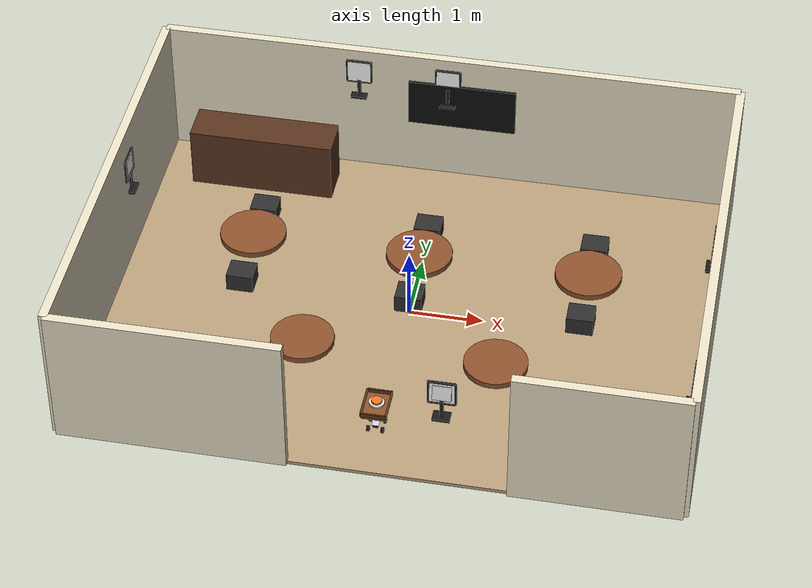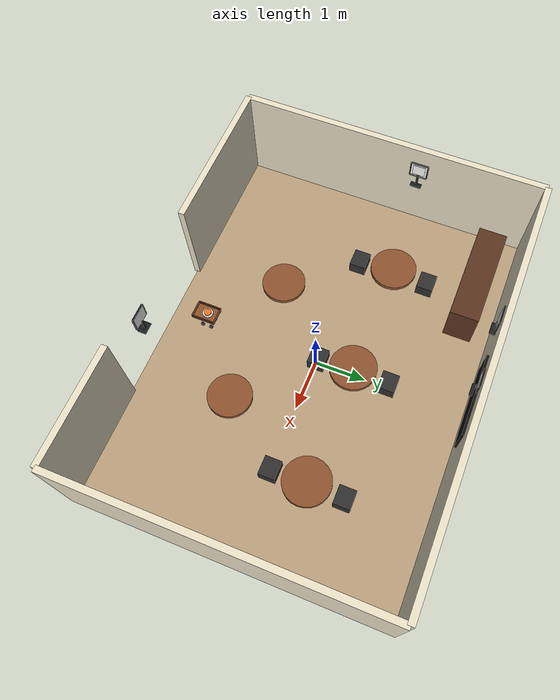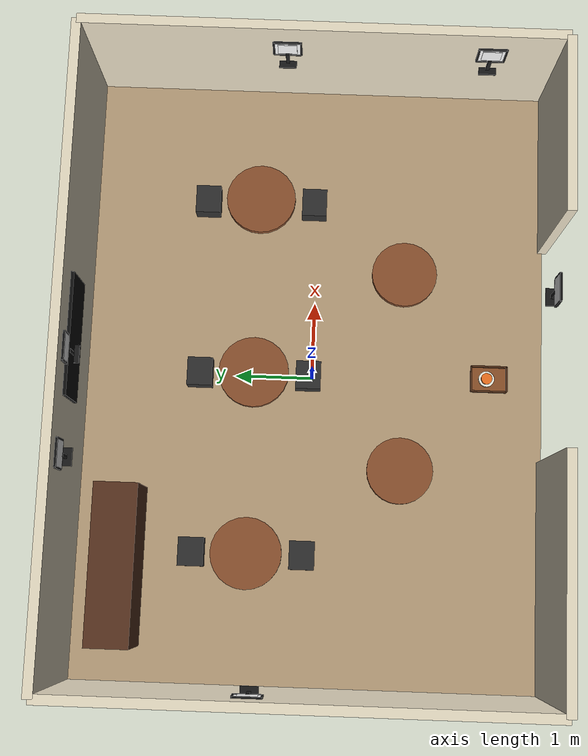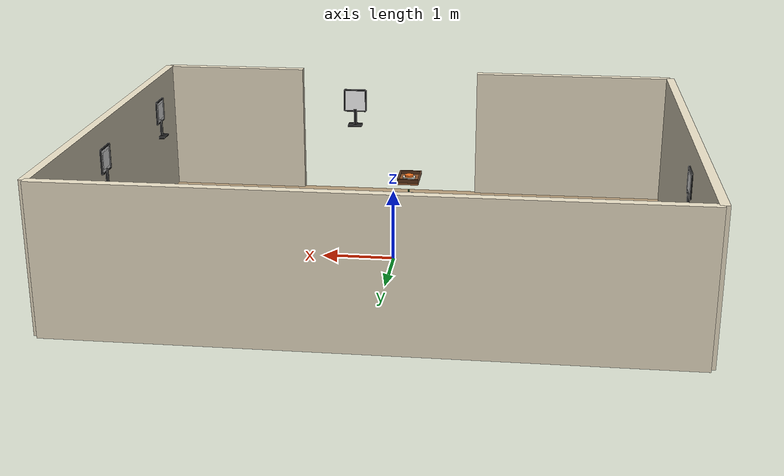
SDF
<?xml version="1.0" ?>
<sdf version="1.10">
  <world name="restaurant_qr_activity">
    <physics name="1ms" type="ignored">
      <max_step_size>0.001</max_step_size>
      <real_time_factor>1.0</real_time_factor>
    </physics>

    <plugin filename="gz-sim-physics-system" name="gz::sim::systems::Physics"/>
    <plugin filename="gz-sim-user-commands-system" name="gz::sim::systems::UserCommands"/>
    <plugin filename="gz-sim-scene-broadcaster-system" name="gz::sim::systems::SceneBroadcaster"/>
    <plugin filename="gz-sim-sensors-system" name="gz::sim::systems::Sensors">
      <render_engine>ogre2</render_engine>
    </plugin>

    <light type="directional" name="sun">
      <cast_shadows>true</cast_shadows>
      <pose>0 0 10 0 0 0</pose>
      <diffuse>0.8 0.8 0.8 1</diffuse>
      <specular>0.2 0.2 0.2 1</specular>
      <direction>-0.4 0.2 -0.9</direction>
    </light>

    <!-- Camera viewpoint when the world opens -->
    <gui fullscreen="0">
      <plugin filename="MinimalScene" name="3D View">
        <gz-gui>
          <title>3D View</title>
          <property type="bool" key="showTitleBar">false</property>
          <property type="string" key="state">docked</property>
        </gz-gui>
        <engine>ogre2</engine>
        <scene>scene</scene>
        <ambient_light>0.6 0.6 0.6</ambient_light>
        <background_color>0.78 0.82 0.86</background_color>
        <camera_pose>-4 -6 5 0 0.65 0.78</camera_pose>
      </plugin>
    </gui>

    <!-- Floor -->
    <model name="restaurant_floor">
      <static>true</static>
      <link name="floor_link">
        <collision name="collision"><geometry><box><size>8 6 0.05</size></box></geometry></collision>
        <visual name="visual">
          <geometry><box><size>8 6 0.05</size></box></geometry>
          <material><ambient>0.72 0.62 0.48 1</ambient><diffuse>0.72 0.62 0.48 1</diffuse></material>
        </visual>
      </link>
    </model>

    <!-- Walls: simple restaurant room, opening near front-right for entry path -->
    <model name="back_wall"><static>true</static><pose>0 3 1 0 0 0</pose><link name="link"><collision name="c"><geometry><box><size>8 0.12 2</size></box></geometry></collision><visual name="v"><geometry><box><size>8 0.12 2</size></box></geometry><material><ambient>0.92 0.88 0.78 1</ambient><diffuse>0.92 0.88 0.78 1</diffuse></material></visual></link></model>
    <model name="left_wall"><static>true</static><pose>-4 0 1 0 0 0</pose><link name="link"><collision name="c"><geometry><box><size>0.12 6 2</size></box></geometry></collision><visual name="v"><geometry><box><size>0.12 6 2</size></box></geometry><material><ambient>0.92 0.88 0.78 1</ambient><diffuse>0.92 0.88 0.78 1</diffuse></material></visual></link></model>
    <model name="right_wall"><static>true</static><pose>4 0 1 0 0 0</pose><link name="link"><collision name="c"><geometry><box><size>0.12 6 2</size></box></geometry></collision><visual name="v"><geometry><box><size>0.12 6 2</size></box></geometry><material><ambient>0.92 0.88 0.78 1</ambient><diffuse>0.92 0.88 0.78 1</diffuse></material></visual></link></model>
    <model name="front_wall_left"><static>true</static><pose>-2.5 -3 1 0 0 0</pose><link name="link"><collision name="c"><geometry><box><size>3 0.12 2</size></box></geometry></collision><visual name="v"><geometry><box><size>3 0.12 2</size></box></geometry><material><ambient>0.92 0.88 0.78 1</ambient><diffuse>0.92 0.88 0.78 1</diffuse></material></visual></link></model>
    <model name="front_wall_right"><static>true</static><pose>2.9 -3 1 0 0 0</pose><link name="link"><collision name="c"><geometry><box><size>2.2 0.12 2</size></box></geometry></collision><visual name="v"><geometry><box><size>2.2 0.12 2</size></box></geometry><material><ambient>0.92 0.88 0.78 1</ambient><diffuse>0.92 0.88 0.78 1</diffuse></material></visual></link></model>

    <!-- Counter / host stand -->
    <model name="service_counter"><static>true</static><pose>-2.5 2.35 0.45 0 0 0</pose><link name="link"><collision name="c"><geometry><box><size>2.0 0.55 0.9</size></box></geometry></collision><visual name="v"><geometry><box><size>2.0 0.55 0.9</size></box></geometry><material><ambient>0.35 0.20 0.12 1</ambient><diffuse>0.35 0.20 0.12 1</diffuse></material></visual></link></model>
    <model name="menu_board"><static>true</static><pose>0.2 2.91 1.25 0 0 0</pose><link name="link"><collision name="c"><geometry><box><size>1.5 0.04 0.7</size></box></geometry></collision><visual name="v"><geometry><box><size>1.5 0.04 0.7</size></box></geometry><material><ambient>0.05 0.05 0.05 1</ambient><diffuse>0.05 0.05 0.05 1</diffuse></material></visual></link></model>

    <!-- Tables and chairs. Main driving aisle is kept around y=-2 to y=0. -->
    <model name="table_1"><static>true</static><pose>-2.3 0.75 0.38 0 0 0</pose><link name="link"><collision name="c"><geometry><cylinder><radius>0.45</radius><length>0.08</length></cylinder></geometry></collision><visual name="v"><geometry><cylinder><radius>0.45</radius><length>0.08</length></cylinder></geometry><material><ambient>0.55 0.32 0.18 1</ambient><diffuse>0.55 0.32 0.18 1</diffuse></material></visual></link></model>
    <model name="table_2"><static>true</static><pose>0.0 0.75 0.38 0 0 0</pose><link name="link"><collision name="c"><geometry><cylinder><radius>0.45</radius><length>0.08</length></cylinder></geometry></collision><visual name="v"><geometry><cylinder><radius>0.45</radius><length>0.08</length></cylinder></geometry><material><ambient>0.55 0.32 0.18 1</ambient><diffuse>0.55 0.32 0.18 1</diffuse></material></visual></link></model>
    <model name="table_3"><static>true</static><pose>2.3 0.75 0.38 0 0 0</pose><link name="link"><collision name="c"><geometry><cylinder><radius>0.45</radius><length>0.08</length></cylinder></geometry></collision><visual name="v"><geometry><cylinder><radius>0.45</radius><length>0.08</length></cylinder></geometry><material><ambient>0.55 0.32 0.18 1</ambient><diffuse>0.55 0.32 0.18 1</diffuse></material></visual></link></model>
    <model name="table_4"><static>true</static><pose>-1.2 -1.15 0.38 0 0 0</pose><link name="link"><collision name="c"><geometry><cylinder><radius>0.42</radius><length>0.08</length></cylinder></geometry></collision><visual name="v"><geometry><cylinder><radius>0.42</radius><length>0.08</length></cylinder></geometry><material><ambient>0.55 0.32 0.18 1</ambient><diffuse>0.55 0.32 0.18 1</diffuse></material></visual></link></model>
    <model name="table_5"><static>true</static><pose>1.35 -1.15 0.38 0 0 0</pose><link name="link"><collision name="c"><geometry><cylinder><radius>0.42</radius><length>0.08</length></cylinder></geometry></collision><visual name="v"><geometry><cylinder><radius>0.42</radius><length>0.08</length></cylinder></geometry><material><ambient>0.55 0.32 0.18 1</ambient><diffuse>0.55 0.32 0.18 1</diffuse></material></visual></link></model>

    <!-- Simple chairs as small blocks -->
    <model name="chair_blocks"><static>true</static>
      <link name="chairs">
        <!-- collision is simplified as one invisible-ish long box, visuals are individual seats -->
        <collision name="c"><geometry><box><size>6.2 3.1 0.32</size></box></geometry><pose>0 0 0.16 0 0 0</pose></collision>
        <visual name="chair_1"><pose>-2.3 0.05 0.22 0 0 0</pose><geometry><box><size>0.36 0.32 0.25</size></box></geometry><material><ambient>0.18 0.18 0.18 1</ambient><diffuse>0.18 0.18 0.18 1</diffuse></material></visual>
        <visual name="chair_2"><pose>-2.3 1.45 0.22 0 0 0</pose><geometry><box><size>0.36 0.32 0.25</size></box></geometry><material><ambient>0.18 0.18 0.18 1</ambient><diffuse>0.18 0.18 0.18 1</diffuse></material></visual>
        <visual name="chair_3"><pose>0.0 0.05 0.22 0 0 0</pose><geometry><box><size>0.36 0.32 0.25</size></box></geometry><material><ambient>0.18 0.18 0.18 1</ambient><diffuse>0.18 0.18 0.18 1</diffuse></material></visual>
        <visual name="chair_4"><pose>0.0 1.45 0.22 0 0 0</pose><geometry><box><size>0.36 0.32 0.25</size></box></geometry><material><ambient>0.18 0.18 0.18 1</ambient><diffuse>0.18 0.18 0.18 1</diffuse></material></visual>
        <visual name="chair_5"><pose>2.3 0.05 0.22 0 0 0</pose><geometry><box><size>0.36 0.32 0.25</size></box></geometry><material><ambient>0.18 0.18 0.18 1</ambient><diffuse>0.18 0.18 0.18 1</diffuse></material></visual>
        <visual name="chair_6"><pose>2.3 1.45 0.22 0 0 0</pose><geometry><box><size>0.36 0.32 0.25</size></box></geometry><material><ambient>0.18 0.18 0.18 1</ambient><diffuse>0.18 0.18 0.18 1</diffuse></material></visual>
      </link>
    </model>

    <!-- QR / activity stations. Pose format: x y z roll pitch yaw. -->
    <include>
      <name>qr_entrance</name>
      <uri>model://restaurant_qr_marker_01</uri>
      <pose>0.95 -2.93 1.10 0 0 0</pose>
    </include>
    <include>
      <name>qr_counter</name>
      <uri>model://restaurant_qr_marker_02</uri>
      <pose>-1.25 2.91 1.25 0 0 3.14159</pose>
    </include>
    <include>
      <name>qr_table_left</name>
      <uri>model://restaurant_qr_marker_03</uri>
      <pose>-3.93 0.6 1.05 0 0 1.5708</pose>
    </include>
    <include>
      <name>qr_table_center</name>
      <uri>model://restaurant_qr_marker_04</uri>
      <pose>0.0 2.91 1.25 0 0 3.14159</pose>
    </include>
    <include>
      <name>qr_table_right</name>
      <uri>model://restaurant_qr_marker_05</uri>
      <pose>3.93 0.45 1.05 0 0 -1.5708</pose>
    </include>
    <include>
      <name>qr_exit</name>
      <uri>model://restaurant_qr_marker_06</uri>
      <pose>3.93 -2.1 1.05 0 0 -1.5708</pose>
    </include>

    <!-- Optional: if your repo already has ackermann_car, this will spawn it. Delete this include if model is missing. -->
    <include>
      <name>robot_car</name>
      <uri>model://ackermann_car</uri>
      <pose>0 -2.25 0.08 0 0 1.5708</pose>
    </include>
  </world>
</sdf>

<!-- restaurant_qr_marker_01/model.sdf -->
<sdf version="1.10">
  <model name="restaurant_qr_marker_01">
    <static>true</static>
    <link name="qr_whiteboard_link">
      <!-- Model origin is on the floor. QR board center height is 0.42 m. -->
      <visual name="white_backing">
        <pose>0 0.006 0.42 0 0 0</pose>
        <geometry><box><size>0.32 0.018 0.32</size></box></geometry>
        <material><ambient>1 1 1 1</ambient><diffuse>1 1 1 1</diffuse></material>
      </visual>
      <visual name="qr_panel_visual">
        <pose>0 -0.006 0.42 0 0 0</pose>
        <geometry><box><size>0.24 0.012 0.24</size></box></geometry>
        <material>
          <ambient>1 1 1 1</ambient>
          <diffuse>1 1 1 1</diffuse>
          <pbr><metal><albedo_map>materials/textures/qr_01.png</albedo_map><roughness>0.85</roughness><metalness>0.0</metalness></metal></pbr>
        </material>
      </visual>
      <visual name="black_frame_top"><pose>0 0 0.59 0 0 0</pose><geometry><box><size>0.34 0.025 0.025</size></box></geometry><material><ambient>0.05 0.05 0.05 1</ambient><diffuse>0.05 0.05 0.05 1</diffuse></material></visual>
      <visual name="black_frame_bottom"><pose>0 0 0.25 0 0 0</pose><geometry><box><size>0.34 0.025 0.025</size></box></geometry><material><ambient>0.05 0.05 0.05 1</ambient><diffuse>0.05 0.05 0.05 1</diffuse></material></visual>
      <visual name="black_frame_left"><pose>-0.17 0 0.42 0 0 0</pose><geometry><box><size>0.025 0.025 0.34</size></box></geometry><material><ambient>0.05 0.05 0.05 1</ambient><diffuse>0.05 0.05 0.05 1</diffuse></material></visual>
      <visual name="black_frame_right"><pose>0.17 0 0.42 0 0 0</pose><geometry><box><size>0.025 0.025 0.34</size></box></geometry><material><ambient>0.05 0.05 0.05 1</ambient><diffuse>0.05 0.05 0.05 1</diffuse></material></visual>
      <visual name="stand_pole"><pose>0 0 0.14 0 0 0</pose><geometry><box><size>0.045 0.045 0.28</size></box></geometry><material><ambient>0.12 0.12 0.12 1</ambient><diffuse>0.12 0.12 0.12 1</diffuse></material></visual>
      <visual name="stand_base"><pose>0 0 0.015 0 0 0</pose><geometry><box><size>0.22 0.16 0.03</size></box></geometry><material><ambient>0.1 0.1 0.1 1</ambient><diffuse>0.1 0.1 0.1 1</diffuse></material></visual>
      <collision name="qr_board_collision"><pose>0 0 0.42 0 0 0</pose><geometry><box><size>0.34 0.03 0.34</size></box></geometry></collision>
      <collision name="stand_collision"><pose>0 0 0.14 0 0 0</pose><geometry><box><size>0.05 0.05 0.28</size></box></geometry></collision>
      <collision name="base_collision"><pose>0 0 0.015 0 0 0</pose><geometry><box><size>0.22 0.16 0.03</size></box></geometry></collision>
    </link>
  </model>
</sdf>

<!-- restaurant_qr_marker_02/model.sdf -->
<sdf version="1.10">
  <model name="restaurant_qr_marker_02">
    <static>true</static>
    <link name="qr_whiteboard_link">
      <!-- Model origin is on the floor. QR board center height is 0.42 m. -->
      <visual name="white_backing">
        <pose>0 0.006 0.42 0 0 0</pose>
        <geometry><box><size>0.32 0.018 0.32</size></box></geometry>
        <material><ambient>1 1 1 1</ambient><diffuse>1 1 1 1</diffuse></material>
      </visual>
      <visual name="qr_panel_visual">
        <pose>0 -0.006 0.42 0 0 0</pose>
        <geometry><box><size>0.24 0.012 0.24</size></box></geometry>
        <material>
          <ambient>1 1 1 1</ambient>
          <diffuse>1 1 1 1</diffuse>
          <pbr><metal><albedo_map>materials/textures/qr_02.png</albedo_map><roughness>0.85</roughness><metalness>0.0</metalness></metal></pbr>
        </material>
      </visual>
      <visual name="black_frame_top"><pose>0 0 0.59 0 0 0</pose><geometry><box><size>0.34 0.025 0.025</size></box></geometry><material><ambient>0.05 0.05 0.05 1</ambient><diffuse>0.05 0.05 0.05 1</diffuse></material></visual>
      <visual name="black_frame_bottom"><pose>0 0 0.25 0 0 0</pose><geometry><box><size>0.34 0.025 0.025</size></box></geometry><material><ambient>0.05 0.05 0.05 1</ambient><diffuse>0.05 0.05 0.05 1</diffuse></material></visual>
      <visual name="black_frame_left"><pose>-0.17 0 0.42 0 0 0</pose><geometry><box><size>0.025 0.025 0.34</size></box></geometry><material><ambient>0.05 0.05 0.05 1</ambient><diffuse>0.05 0.05 0.05 1</diffuse></material></visual>
      <visual name="black_frame_right"><pose>0.17 0 0.42 0 0 0</pose><geometry><box><size>0.025 0.025 0.34</size></box></geometry><material><ambient>0.05 0.05 0.05 1</ambient><diffuse>0.05 0.05 0.05 1</diffuse></material></visual>
      <visual name="stand_pole"><pose>0 0 0.14 0 0 0</pose><geometry><box><size>0.045 0.045 0.28</size></box></geometry><material><ambient>0.12 0.12 0.12 1</ambient><diffuse>0.12 0.12 0.12 1</diffuse></material></visual>
      <visual name="stand_base"><pose>0 0 0.015 0 0 0</pose><geometry><box><size>0.22 0.16 0.03</size></box></geometry><material><ambient>0.1 0.1 0.1 1</ambient><diffuse>0.1 0.1 0.1 1</diffuse></material></visual>
      <collision name="qr_board_collision"><pose>0 0 0.42 0 0 0</pose><geometry><box><size>0.34 0.03 0.34</size></box></geometry></collision>
      <collision name="stand_collision"><pose>0 0 0.14 0 0 0</pose><geometry><box><size>0.05 0.05 0.28</size></box></geometry></collision>
      <collision name="base_collision"><pose>0 0 0.015 0 0 0</pose><geometry><box><size>0.22 0.16 0.03</size></box></geometry></collision>
    </link>
  </model>
</sdf>

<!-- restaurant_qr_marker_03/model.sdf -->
<sdf version="1.10">
  <model name="restaurant_qr_marker_03">
    <static>true</static>
    <link name="qr_whiteboard_link">
      <!-- Model origin is on the floor. QR board center height is 0.42 m. -->
      <visual name="white_backing">
        <pose>0 0.006 0.42 0 0 0</pose>
        <geometry><box><size>0.32 0.018 0.32</size></box></geometry>
        <material><ambient>1 1 1 1</ambient><diffuse>1 1 1 1</diffuse></material>
      </visual>
      <visual name="qr_panel_visual">
        <pose>0 -0.006 0.42 0 0 0</pose>
        <geometry><box><size>0.24 0.012 0.24</size></box></geometry>
        <material>
          <ambient>1 1 1 1</ambient>
          <diffuse>1 1 1 1</diffuse>
          <pbr><metal><albedo_map>materials/textures/qr_03.png</albedo_map><roughness>0.85</roughness><metalness>0.0</metalness></metal></pbr>
        </material>
      </visual>
      <visual name="black_frame_top"><pose>0 0 0.59 0 0 0</pose><geometry><box><size>0.34 0.025 0.025</size></box></geometry><material><ambient>0.05 0.05 0.05 1</ambient><diffuse>0.05 0.05 0.05 1</diffuse></material></visual>
      <visual name="black_frame_bottom"><pose>0 0 0.25 0 0 0</pose><geometry><box><size>0.34 0.025 0.025</size></box></geometry><material><ambient>0.05 0.05 0.05 1</ambient><diffuse>0.05 0.05 0.05 1</diffuse></material></visual>
      <visual name="black_frame_left"><pose>-0.17 0 0.42 0 0 0</pose><geometry><box><size>0.025 0.025 0.34</size></box></geometry><material><ambient>0.05 0.05 0.05 1</ambient><diffuse>0.05 0.05 0.05 1</diffuse></material></visual>
      <visual name="black_frame_right"><pose>0.17 0 0.42 0 0 0</pose><geometry><box><size>0.025 0.025 0.34</size></box></geometry><material><ambient>0.05 0.05 0.05 1</ambient><diffuse>0.05 0.05 0.05 1</diffuse></material></visual>
      <visual name="stand_pole"><pose>0 0 0.14 0 0 0</pose><geometry><box><size>0.045 0.045 0.28</size></box></geometry><material><ambient>0.12 0.12 0.12 1</ambient><diffuse>0.12 0.12 0.12 1</diffuse></material></visual>
      <visual name="stand_base"><pose>0 0 0.015 0 0 0</pose><geometry><box><size>0.22 0.16 0.03</size></box></geometry><material><ambient>0.1 0.1 0.1 1</ambient><diffuse>0.1 0.1 0.1 1</diffuse></material></visual>
      <collision name="qr_board_collision"><pose>0 0 0.42 0 0 0</pose><geometry><box><size>0.34 0.03 0.34</size></box></geometry></collision>
      <collision name="stand_collision"><pose>0 0 0.14 0 0 0</pose><geometry><box><size>0.05 0.05 0.28</size></box></geometry></collision>
      <collision name="base_collision"><pose>0 0 0.015 0 0 0</pose><geometry><box><size>0.22 0.16 0.03</size></box></geometry></collision>
    </link>
  </model>
</sdf>

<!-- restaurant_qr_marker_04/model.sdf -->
<sdf version="1.10">
  <model name="restaurant_qr_marker_04">
    <static>true</static>
    <link name="qr_whiteboard_link">
      <!-- Model origin is on the floor. QR board center height is 0.42 m. -->
      <visual name="white_backing">
        <pose>0 0.006 0.42 0 0 0</pose>
        <geometry><box><size>0.32 0.018 0.32</size></box></geometry>
        <material><ambient>1 1 1 1</ambient><diffuse>1 1 1 1</diffuse></material>
      </visual>
      <visual name="qr_panel_visual">
        <pose>0 -0.006 0.42 0 0 0</pose>
        <geometry><box><size>0.24 0.012 0.24</size></box></geometry>
        <material>
          <ambient>1 1 1 1</ambient>
          <diffuse>1 1 1 1</diffuse>
          <pbr><metal><albedo_map>materials/textures/qr_04.png</albedo_map><roughness>0.85</roughness><metalness>0.0</metalness></metal></pbr>
        </material>
      </visual>
      <visual name="black_frame_top"><pose>0 0 0.59 0 0 0</pose><geometry><box><size>0.34 0.025 0.025</size></box></geometry><material><ambient>0.05 0.05 0.05 1</ambient><diffuse>0.05 0.05 0.05 1</diffuse></material></visual>
      <visual name="black_frame_bottom"><pose>0 0 0.25 0 0 0</pose><geometry><box><size>0.34 0.025 0.025</size></box></geometry><material><ambient>0.05 0.05 0.05 1</ambient><diffuse>0.05 0.05 0.05 1</diffuse></material></visual>
      <visual name="black_frame_left"><pose>-0.17 0 0.42 0 0 0</pose><geometry><box><size>0.025 0.025 0.34</size></box></geometry><material><ambient>0.05 0.05 0.05 1</ambient><diffuse>0.05 0.05 0.05 1</diffuse></material></visual>
      <visual name="black_frame_right"><pose>0.17 0 0.42 0 0 0</pose><geometry><box><size>0.025 0.025 0.34</size></box></geometry><material><ambient>0.05 0.05 0.05 1</ambient><diffuse>0.05 0.05 0.05 1</diffuse></material></visual>
      <visual name="stand_pole"><pose>0 0 0.14 0 0 0</pose><geometry><box><size>0.045 0.045 0.28</size></box></geometry><material><ambient>0.12 0.12 0.12 1</ambient><diffuse>0.12 0.12 0.12 1</diffuse></material></visual>
      <visual name="stand_base"><pose>0 0 0.015 0 0 0</pose><geometry><box><size>0.22 0.16 0.03</size></box></geometry><material><ambient>0.1 0.1 0.1 1</ambient><diffuse>0.1 0.1 0.1 1</diffuse></material></visual>
      <collision name="qr_board_collision"><pose>0 0 0.42 0 0 0</pose><geometry><box><size>0.34 0.03 0.34</size></box></geometry></collision>
      <collision name="stand_collision"><pose>0 0 0.14 0 0 0</pose><geometry><box><size>0.05 0.05 0.28</size></box></geometry></collision>
      <collision name="base_collision"><pose>0 0 0.015 0 0 0</pose><geometry><box><size>0.22 0.16 0.03</size></box></geometry></collision>
    </link>
  </model>
</sdf>

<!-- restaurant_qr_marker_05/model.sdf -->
<sdf version="1.10">
  <model name="restaurant_qr_marker_05">
    <static>true</static>
    <link name="qr_whiteboard_link">
      <!-- Model origin is on the floor. QR board center height is 0.42 m. -->
      <visual name="white_backing">
        <pose>0 0.006 0.42 0 0 0</pose>
        <geometry><box><size>0.32 0.018 0.32</size></box></geometry>
        <material><ambient>1 1 1 1</ambient><diffuse>1 1 1 1</diffuse></material>
      </visual>
      <visual name="qr_panel_visual">
        <pose>0 -0.006 0.42 0 0 0</pose>
        <geometry><box><size>0.24 0.012 0.24</size></box></geometry>
        <material>
          <ambient>1 1 1 1</ambient>
          <diffuse>1 1 1 1</diffuse>
          <pbr><metal><albedo_map>materials/textures/qr_05.png</albedo_map><roughness>0.85</roughness><metalness>0.0</metalness></metal></pbr>
        </material>
      </visual>
      <visual name="black_frame_top"><pose>0 0 0.59 0 0 0</pose><geometry><box><size>0.34 0.025 0.025</size></box></geometry><material><ambient>0.05 0.05 0.05 1</ambient><diffuse>0.05 0.05 0.05 1</diffuse></material></visual>
      <visual name="black_frame_bottom"><pose>0 0 0.25 0 0 0</pose><geometry><box><size>0.34 0.025 0.025</size></box></geometry><material><ambient>0.05 0.05 0.05 1</ambient><diffuse>0.05 0.05 0.05 1</diffuse></material></visual>
      <visual name="black_frame_left"><pose>-0.17 0 0.42 0 0 0</pose><geometry><box><size>0.025 0.025 0.34</size></box></geometry><material><ambient>0.05 0.05 0.05 1</ambient><diffuse>0.05 0.05 0.05 1</diffuse></material></visual>
      <visual name="black_frame_right"><pose>0.17 0 0.42 0 0 0</pose><geometry><box><size>0.025 0.025 0.34</size></box></geometry><material><ambient>0.05 0.05 0.05 1</ambient><diffuse>0.05 0.05 0.05 1</diffuse></material></visual>
      <visual name="stand_pole"><pose>0 0 0.14 0 0 0</pose><geometry><box><size>0.045 0.045 0.28</size></box></geometry><material><ambient>0.12 0.12 0.12 1</ambient><diffuse>0.12 0.12 0.12 1</diffuse></material></visual>
      <visual name="stand_base"><pose>0 0 0.015 0 0 0</pose><geometry><box><size>0.22 0.16 0.03</size></box></geometry><material><ambient>0.1 0.1 0.1 1</ambient><diffuse>0.1 0.1 0.1 1</diffuse></material></visual>
      <collision name="qr_board_collision"><pose>0 0 0.42 0 0 0</pose><geometry><box><size>0.34 0.03 0.34</size></box></geometry></collision>
      <collision name="stand_collision"><pose>0 0 0.14 0 0 0</pose><geometry><box><size>0.05 0.05 0.28</size></box></geometry></collision>
      <collision name="base_collision"><pose>0 0 0.015 0 0 0</pose><geometry><box><size>0.22 0.16 0.03</size></box></geometry></collision>
    </link>
  </model>
</sdf>

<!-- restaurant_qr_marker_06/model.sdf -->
<sdf version="1.10">
  <model name="restaurant_qr_marker_06">
    <static>true</static>
    <link name="qr_whiteboard_link">
      <!-- Model origin is on the floor. QR board center height is 0.42 m. -->
      <visual name="white_backing">
        <pose>0 0.006 0.42 0 0 0</pose>
        <geometry><box><size>0.32 0.018 0.32</size></box></geometry>
        <material><ambient>1 1 1 1</ambient><diffuse>1 1 1 1</diffuse></material>
      </visual>
      <visual name="qr_panel_visual">
        <pose>0 -0.006 0.42 0 0 0</pose>
        <geometry><box><size>0.24 0.012 0.24</size></box></geometry>
        <material>
          <ambient>1 1 1 1</ambient>
          <diffuse>1 1 1 1</diffuse>
          <pbr><metal><albedo_map>materials/textures/qr_06.png</albedo_map><roughness>0.85</roughness><metalness>0.0</metalness></metal></pbr>
        </material>
      </visual>
      <visual name="black_frame_top"><pose>0 0 0.59 0 0 0</pose><geometry><box><size>0.34 0.025 0.025</size></box></geometry><material><ambient>0.05 0.05 0.05 1</ambient><diffuse>0.05 0.05 0.05 1</diffuse></material></visual>
      <visual name="black_frame_bottom"><pose>0 0 0.25 0 0 0</pose><geometry><box><size>0.34 0.025 0.025</size></box></geometry><material><ambient>0.05 0.05 0.05 1</ambient><diffuse>0.05 0.05 0.05 1</diffuse></material></visual>
      <visual name="black_frame_left"><pose>-0.17 0 0.42 0 0 0</pose><geometry><box><size>0.025 0.025 0.34</size></box></geometry><material><ambient>0.05 0.05 0.05 1</ambient><diffuse>0.05 0.05 0.05 1</diffuse></material></visual>
      <visual name="black_frame_right"><pose>0.17 0 0.42 0 0 0</pose><geometry><box><size>0.025 0.025 0.34</size></box></geometry><material><ambient>0.05 0.05 0.05 1</ambient><diffuse>0.05 0.05 0.05 1</diffuse></material></visual>
      <visual name="stand_pole"><pose>0 0 0.14 0 0 0</pose><geometry><box><size>0.045 0.045 0.28</size></box></geometry><material><ambient>0.12 0.12 0.12 1</ambient><diffuse>0.12 0.12 0.12 1</diffuse></material></visual>
      <visual name="stand_base"><pose>0 0 0.015 0 0 0</pose><geometry><box><size>0.22 0.16 0.03</size></box></geometry><material><ambient>0.1 0.1 0.1 1</ambient><diffuse>0.1 0.1 0.1 1</diffuse></material></visual>
      <collision name="qr_board_collision"><pose>0 0 0.42 0 0 0</pose><geometry><box><size>0.34 0.03 0.34</size></box></geometry></collision>
      <collision name="stand_collision"><pose>0 0 0.14 0 0 0</pose><geometry><box><size>0.05 0.05 0.28</size></box></geometry></collision>
      <collision name="base_collision"><pose>0 0 0.015 0 0 0</pose><geometry><box><size>0.22 0.16 0.03</size></box></geometry></collision>
    </link>
  </model>
</sdf>

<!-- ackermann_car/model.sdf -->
<sdf version="1.10">
  <model name="ackermann_car">
    <static>false</static>
    <self_collide>false</self_collide>

    <link name="chassis">
    <!-- Delivery tray fixed on robot chassis -->
<visual name="delivery_tray_base">
  <pose>0 0 0.28 0 0 0</pose>
  <geometry>
    <box>
      <size>0.45 0.32 0.04</size>
    </box>
  </geometry>
  <material>
    <ambient>0.55 0.32 0.16 1</ambient>
    <diffuse>0.55 0.32 0.16 1</diffuse>
  </material>
</visual>

<visual name="delivery_tray_plate">
  <pose>0.03 0 0.325 0 0 0</pose>
  <geometry>
    <cylinder>
      <radius>0.10</radius>
      <length>0.025</length>
    </cylinder>
  </geometry>
  <material>
    <ambient>0.95 0.95 0.90 1</ambient>
    <diffuse>0.95 0.95 0.90 1</diffuse>
  </material>
</visual>

<visual name="delivery_tray_food">
  <pose>0.03 0 0.35 0 0 0</pose>
  <geometry>
    <cylinder>
      <radius>0.07</radius>
      <length>0.035</length>
    </cylinder>
  </geometry>
  <material>
    <ambient>0.95 0.45 0.12 1</ambient>
    <diffuse>0.95 0.45 0.12 1</diffuse>
  </material>
</visual>

<visual name="delivery_tray_front_lip">
  <pose>0.225 0 0.325 0 0 0</pose>
  <geometry>
    <box>
      <size>0.02 0.32 0.06</size>
    </box>
  </geometry>
  <material>
    <ambient>0.35 0.20 0.10 1</ambient>
    <diffuse>0.35 0.20 0.10 1</diffuse>
  </material>
</visual>

<visual name="delivery_tray_back_lip">
  <pose>-0.225 0 0.325 0 0 0</pose>
  <geometry>
    <box>
      <size>0.02 0.32 0.06</size>
    </box>
  </geometry>
  <material>
    <ambient>0.35 0.20 0.10 1</ambient>
    <diffuse>0.35 0.20 0.10 1</diffuse>
  </material>
</visual>

<visual name="delivery_tray_left_lip">
  <pose>0 0.16 0.325 0 0 0</pose>
  <geometry>
    <box>
      <size>0.45 0.02 0.06</size>
    </box>
  </geometry>
  <material>
    <ambient>0.35 0.20 0.10 1</ambient>
    <diffuse>0.35 0.20 0.10 1</diffuse>
  </material>
</visual>

<visual name="delivery_tray_right_lip">
  <pose>0 -0.16 0.325 0 0 0</pose>
  <geometry>
    <box>
      <size>0.45 0.02 0.06</size>
    </box>
  </geometry>
  <material>
    <ambient>0.35 0.20 0.10 1</ambient>
    <diffuse>0.35 0.20 0.10 1</diffuse>
  </material>
</visual>
      <pose>0 0 0.08 0 0 0</pose>
      <inertial>
        <mass>1.384</mass>
        <inertia>
          <ixx>0.0073</ixx>
          <iyy>0.0091</iyy>
          <izz>0.0131</izz>
          <ixy>0</ixy>
          <ixz>0</ixz>
          <iyz>0</iyz>
        </inertia>
      </inertial>

      <collision name="base_collision">
        <pose>0 0 -0.01 0 0 0</pose>
        <geometry>
          <box>
            <size>0.16 0.07 0.03</size>
          </box>
        </geometry>
      </collision>

      <collision name="platform_collision">
        <pose>0 0 0.032 0 0 0</pose>
        <geometry>
          <box>
            <size>0.2 0.095 0.004</size>
          </box>
        </geometry>
      </collision>

      <collision name="tower_collision">
        <pose>0.07 0 0.079 0 0 0</pose>
        <geometry>
          <box>
            <size>0.02 0.02 0.09</size>
          </box>
        </geometry>
      </collision>

      <visual name="base_visual">
        <pose>0 0 -0.01 0 0 0</pose>
        <geometry>
          <box>
            <size>0.16 0.07 0.03</size>
          </box>
        </geometry>
        <material>
          <ambient>0.12 0.12 0.12 1</ambient>
          <diffuse>0.18 0.18 0.18 1</diffuse>
        </material>
      </visual>

      <visual name="platform_visual">
        <pose>0 0 0.032 0 0 0</pose>
        <geometry>
          <box>
            <size>0.2 0.095 0.004</size>
          </box>
        </geometry>
        <material>
          <ambient>0.75 0.75 0.78 1</ambient>
          <diffuse>0.82 0.82 0.86 1</diffuse>
        </material>
      </visual>

      <visual name="tower_visual">
        <pose>0.07 0 0.079 0 0 0</pose>
        <geometry>
          <box>
            <size>0.02 0.02 0.09</size>
          </box>
        </geometry>
        <material>
          <ambient>0.2 0.2 0.2 1</ambient>
          <diffuse>0.28 0.28 0.28 1</diffuse>
        </material>
      </visual>
    </link>

    <link name="front_left_steering">
      <pose>0.0875 0.092075 0.0381 0 0 0</pose>
      <inertial>
        <mass>0.02</mass>
        <inertia>
          <ixx>0.000002</ixx>
          <iyy>0.000002</iyy>
          <izz>0.000002</izz>
          <ixy>0</ixy>
          <ixz>0</ixz>
          <iyz>0</iyz>
        </inertia>
      </inertial>
    </link>

    <link name="front_right_steering">
      <pose>0.0875 -0.092075 0.0381 0 0 0</pose>
      <inertial>
        <mass>0.02</mass>
        <inertia>
          <ixx>0.000002</ixx>
          <iyy>0.000002</iyy>
          <izz>0.000002</izz>
          <ixy>0</ixy>
          <ixz>0</ixz>
          <iyz>0</iyz>
        </inertia>
      </inertial>
    </link>

    <link name="front_left_wheel">
      <pose>0.0875 0.092075 0.0381 0 0 0</pose>
      <inertial>
        <mass>0.09</mass>
        <inertia>
          <ixx>0.000044</ixx>
          <iyy>0.000065</iyy>
          <izz>0.000044</izz>
          <ixy>0</ixy>
          <ixz>0</ixz>
          <iyz>0</iyz>
        </inertia>
      </inertial>
      <collision name="collision">
        <geometry>
          <sphere>
            <radius>0.0381</radius>
          </sphere>
        </geometry>
        <surface>
          <friction>
            <ode>
              <mu>1.0</mu>
              <mu2>1.0</mu2>
            </ode>
          </friction>
        </surface>
      </collision>
      <visual name="visual">
        <pose>0 0 0 1.57079632679 0 0</pose>
        <geometry>
          <cylinder>
            <radius>0.0381</radius>
            <length>0.0381</length>
          </cylinder>
        </geometry>
        <material>
          <ambient>0.04 0.04 0.04 1</ambient>
          <diffuse>0.08 0.08 0.08 1</diffuse>
        </material>
      </visual>
    </link>

    <link name="front_right_wheel">
      <pose>0.0875 -0.092075 0.0381 0 0 0</pose>
      <inertial>
        <mass>0.09</mass>
        <inertia>
          <ixx>0.000044</ixx>
          <iyy>0.000065</iyy>
          <izz>0.000044</izz>
          <ixy>0</ixy>
          <ixz>0</ixz>
          <iyz>0</iyz>
        </inertia>
      </inertial>
      <collision name="collision">
        <geometry>
          <sphere>
            <radius>0.0381</radius>
          </sphere>
        </geometry>
        <surface>
          <friction>
            <ode>
              <mu>1.0</mu>
              <mu2>1.0</mu2>
            </ode>
          </friction>
        </surface>
      </collision>
      <visual name="visual">
        <pose>0 0 0 1.57079632679 0 0</pose>
        <geometry>
          <cylinder>
            <radius>0.0381</radius>
            <length>0.0381</length>
          </cylinder>
        </geometry>
        <material>
          <ambient>0.04 0.04 0.04 1</ambient>
          <diffuse>0.08 0.08 0.08 1</diffuse>
        </material>
      </visual>
    </link>

    <link name="rear_left_wheel">
      <pose>-0.0875 0.092075 0.0381 0 0 0</pose>
      <inertial>
        <mass>0.09</mass>
        <inertia>
          <ixx>0.000044</ixx>
          <iyy>0.000065</iyy>
          <izz>0.000044</izz>
          <ixy>0</ixy>
          <ixz>0</ixz>
          <iyz>0</iyz>
        </inertia>
      </inertial>
      <collision name="collision">
        <geometry>
          <sphere>
            <radius>0.0381</radius>
          </sphere>
        </geometry>
        <surface>
          <friction>
            <ode>
              <mu>1.0</mu>
              <mu2>1.0</mu2>
            </ode>
          </friction>
        </surface>
      </collision>
      <visual name="visual">
        <pose>0 0 0 1.57079632679 0 0</pose>
        <geometry>
          <cylinder>
            <radius>0.0381</radius>
            <length>0.0381</length>
          </cylinder>
        </geometry>
        <material>
          <ambient>0.04 0.04 0.04 1</ambient>
          <diffuse>0.08 0.08 0.08 1</diffuse>
        </material>
      </visual>
    </link>

    <link name="rear_right_wheel">
      <pose>-0.0875 -0.092075 0.0381 0 0 0</pose>
      <inertial>
        <mass>0.09</mass>
        <inertia>
          <ixx>0.000044</ixx>
          <iyy>0.000065</iyy>
          <izz>0.000044</izz>
          <ixy>0</ixy>
          <ixz>0</ixz>
          <iyz>0</iyz>
        </inertia>
      </inertial>
      <collision name="collision">
        <geometry>
          <sphere>
            <radius>0.0381</radius>
          </sphere>
        </geometry>
        <surface>
          <friction>
            <ode>
              <mu>1.0</mu>
              <mu2>1.0</mu2>
            </ode>
          </friction>
        </surface>
      </collision>
      <visual name="visual">
        <pose>0 0 0 1.57079632679 0 0</pose>
        <geometry>
          <cylinder>
            <radius>0.0381</radius>
            <length>0.0381</length>
          </cylinder>
        </geometry>
        <material>
          <ambient>0.04 0.04 0.04 1</ambient>
          <diffuse>0.08 0.08 0.08 1</diffuse>
        </material>
      </visual>
    </link>

    <link name="camera_link">
      <pose>0.09 0 0.204 0 0.174533 0</pose>
      <inertial>
        <mass>0.05</mass>
        <inertia>
          <ixx>0.000005</ixx>
          <iyy>0.000005</iyy>
          <izz>0.000005</izz>
          <ixy>0</ixy>
          <ixz>0</ixz>
          <iyz>0</iyz>
        </inertia>
      </inertial>
      <visual name="camera_body_visual">
        <geometry>
          <box>
            <size>0.025 0.025 0.02</size>
          </box>
        </geometry>
        <material>
          <ambient>0.1 0.22 0.1 1</ambient>
          <diffuse>0.15 0.35 0.15 1</diffuse>
        </material>
      </visual>
      <sensor name="front_camera" type="camera">
        <always_on>1</always_on>
        <update_rate>30</update_rate>
        <visualize>true</visualize>
        <camera>
          <horizontal_fov>1.047</horizontal_fov>
          <image>
            <width>640</width>
            <height>480</height>
            <format>R8G8B8</format>
          </image>
          <clip>
            <near>0.02</near>
            <far>100</far>
          </clip>
        </camera>
      </sensor>
    </link>

    <joint name="front_left_steer_joint" type="revolute">
      <parent>chassis</parent>
      <child>front_left_steering</child>
      <axis>
        <xyz>0 0 1</xyz>
        <limit>
          <lower>-0.6</lower>
          <upper>0.6</upper>
          <effort>100</effort>
          <velocity>5</velocity>
        </limit>
        <dynamics>
          <damping>0.4</damping>
        </dynamics>
      </axis>
    </joint>

    <joint name="front_right_steer_joint" type="revolute">
      <parent>chassis</parent>
      <child>front_right_steering</child>
      <axis>
        <xyz>0 0 1</xyz>
        <limit>
          <lower>-0.6</lower>
          <upper>0.6</upper>
          <effort>100</effort>
          <velocity>5</velocity>
        </limit>
        <dynamics>
          <damping>0.4</damping>
        </dynamics>
      </axis>
    </joint>

    <joint name="front_left_wheel_joint" type="revolute">
      <parent>front_left_steering</parent>
      <child>front_left_wheel</child>
      <axis>
        <xyz>0 1 0</xyz>
        <limit>
          <lower>-1000000</lower>
          <upper>1000000</upper>
          <effort>100</effort>
          <velocity>100</velocity>
        </limit>
        <dynamics>
          <damping>0.05</damping>
        </dynamics>
      </axis>
    </joint>

    <joint name="front_right_wheel_joint" type="revolute">
      <parent>front_right_steering</parent>
      <child>front_right_wheel</child>
      <axis>
        <xyz>0 1 0</xyz>
        <limit>
          <lower>-1000000</lower>
          <upper>1000000</upper>
          <effort>100</effort>
          <velocity>100</velocity>
        </limit>
        <dynamics>
          <damping>0.05</damping>
        </dynamics>
      </axis>
    </joint>

    <joint name="rear_left_wheel_joint" type="revolute">
      <parent>chassis</parent>
      <child>rear_left_wheel</child>
      <axis>
        <xyz>0 1 0</xyz>
        <limit>
          <lower>-1000000</lower>
          <upper>1000000</upper>
          <effort>100</effort>
          <velocity>100</velocity>
        </limit>
        <dynamics>
          <damping>0.05</damping>
        </dynamics>
      </axis>
    </joint>

    <joint name="rear_right_wheel_joint" type="revolute">
      <parent>chassis</parent>
      <child>rear_right_wheel</child>
      <axis>
        <xyz>0 1 0</xyz>
        <limit>
          <lower>-1000000</lower>
          <upper>1000000</upper>
          <effort>100</effort>
          <velocity>100</velocity>
        </limit>
        <dynamics>
          <damping>0.05</damping>
        </dynamics>
      </axis>
    </joint>

    <joint name="camera_mount_joint" type="fixed">
      <parent>chassis</parent>
      <child>camera_link</child>
    </joint>

    <plugin filename="gz-sim-ackermann-steering-system"
            name="gz::sim::systems::AckermannSteering">
      <topic>/cmd_vel</topic>
      <left_joint>rear_left_wheel_joint</left_joint>
      <right_joint>rear_right_wheel_joint</right_joint>
      <left_steering_joint>front_left_steer_joint</left_steering_joint>
      <right_steering_joint>front_right_steer_joint</right_steering_joint>
      <wheel_base>0.175</wheel_base>
      <wheel_separation>0.18415</wheel_separation>
      <kingpin_width>0.18415</kingpin_width>
      <wheel_radius>0.0381</wheel_radius>
      <steering_limit>0.6</steering_limit>
      <steer_p_gain>12</steer_p_gain>
      <min_velocity>-1.5</min_velocity>
      <max_velocity>1.5</max_velocity>
      <min_acceleration>-3.0</min_acceleration>
      <max_acceleration>3.0</max_acceleration>
      <odom_publish_frequency>30</odom_publish_frequency>
    </plugin>
  </model>
</sdf>
